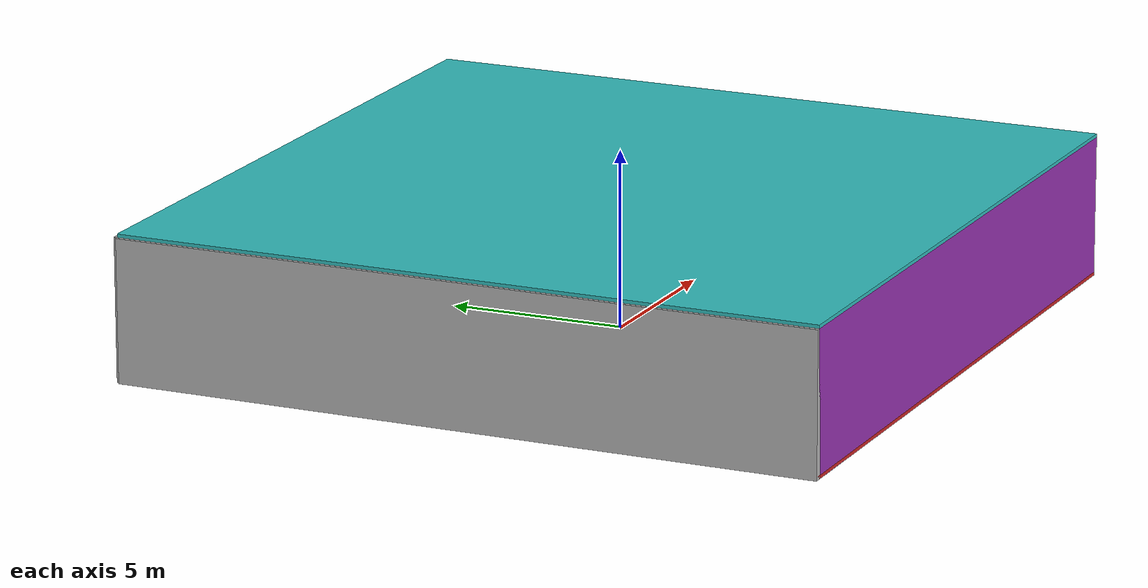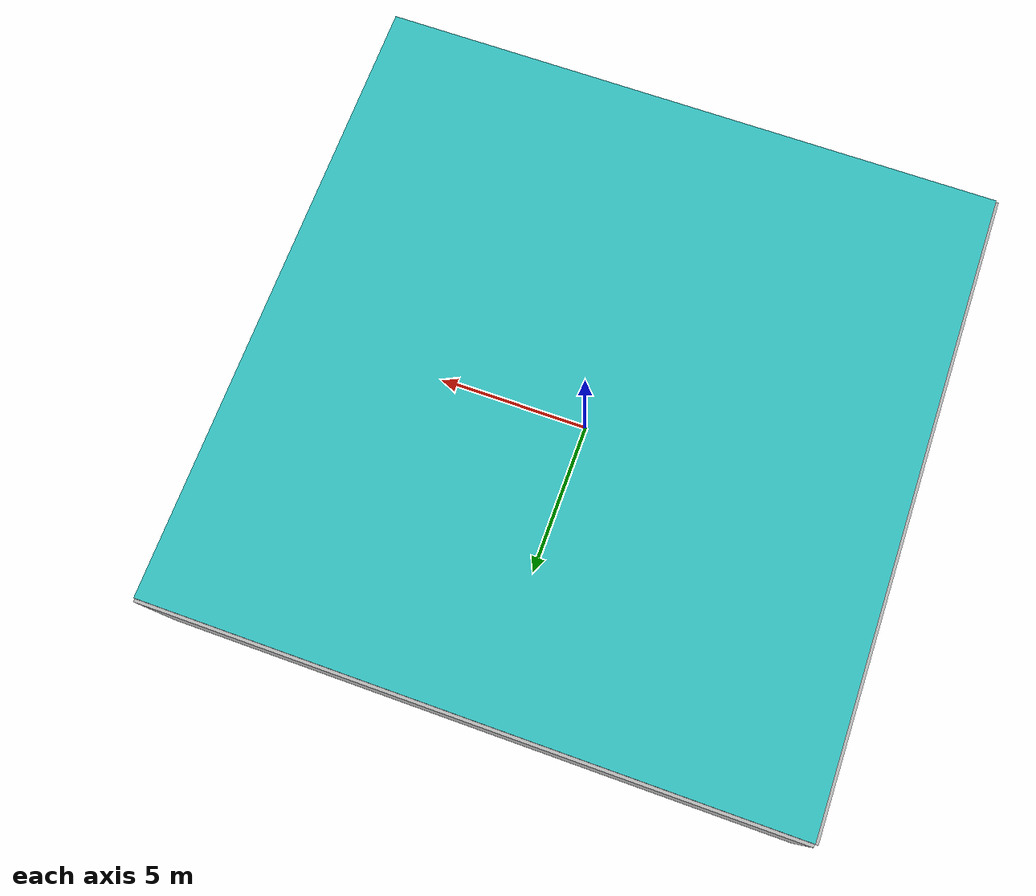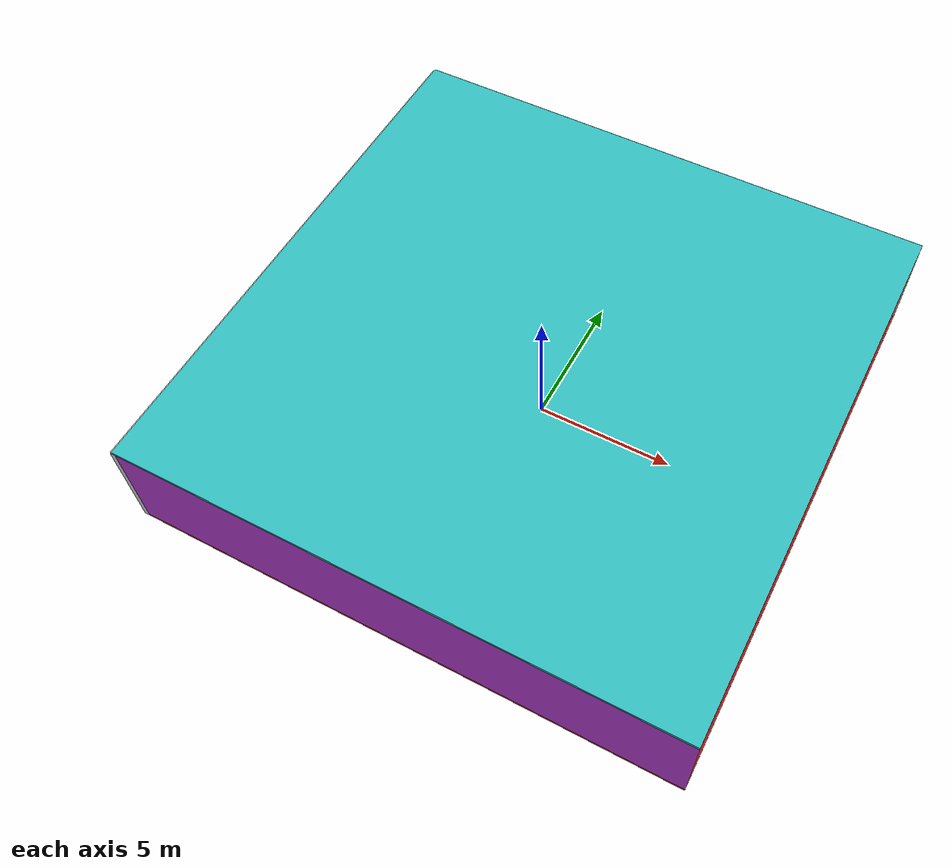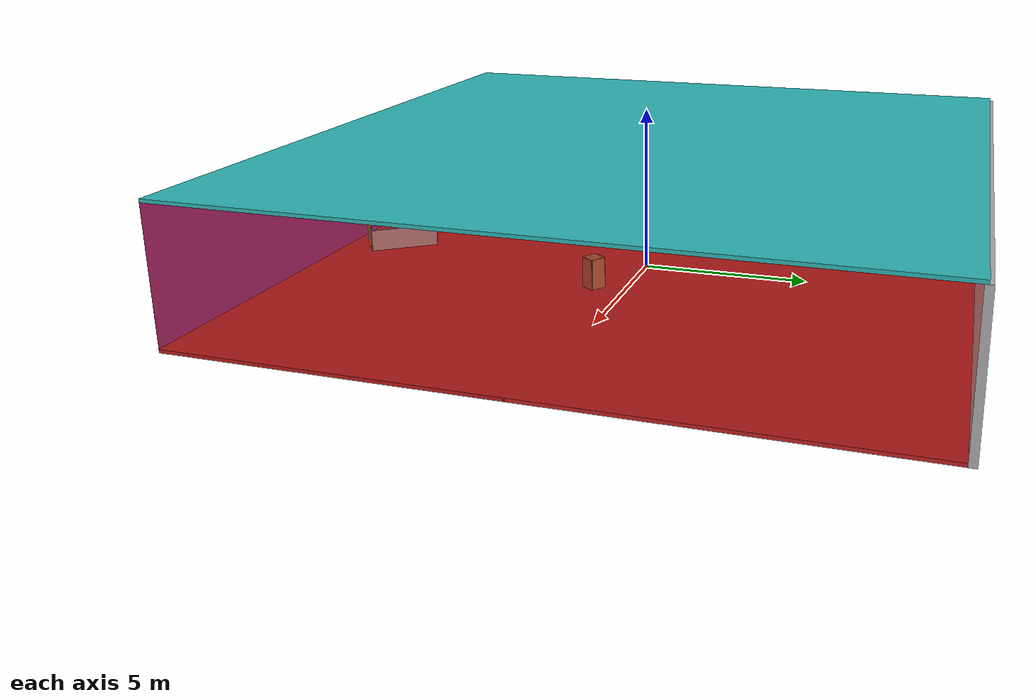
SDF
<sdf version="1.4">
 <world name="default">
  <physics type="ode">
   <max_step_size>0.001</max_step_size>
   <real_time_factor>1</real_time_factor>
   <real_time_update_rate>1000</real_time_update_rate>
   <gravity>0 0 -9.8</gravity>
  </physics>
  <scene><ambient>0.4 0.4 0.4 1</ambient><background>0.7 0.7 0.7 1</background><shadows>1</shadows></scene>
  <model name="Surrounding">
   <static>1</static>
   <link name="Ceiling">
    <collision name="Ceiling_Collision"><geometry><box><size>20 20 0.1</size></box></geometry></collision>
    <visual name="Ceiling_Visual">
     <geometry><box><size>20 20 0.1</size></box></geometry>
     <material>
      <script><uri>file://media/materials/scripts/gazebo.material</uri><name>Gazebo/Turquoise</name></script>
     </material>
    </visual>
    <pose>0 0 4.05 0 0 0</pose>
   </link>
   <link name="Wall_South">
    <collision name="Wall_South_Collision">
     <geometry><box><size>20 0 4</size></box></geometry>
     <pose>0 0 2 0 -0 0</pose>
    </collision>
    <visual name="Wall_South_Visual">
     <pose>0 0 2 0 -0 0</pose>
     <geometry><box><size>20 0 4</size></box></geometry>
     <material>
      <script><uri>file://media/materials/scripts/gazebo.material</uri><name>Gazebo/PurpleGlow</name></script>
     </material>
    </visual>
    <velocity_decay><linear>0</linear><angular>0</angular></velocity_decay>
    <pose>0 -10 0 0 -0 0</pose>
   </link>
   <link name="Wall_East">
    <collision name="Wall_21_Collision">
     <geometry><box><size>20 0 4</size></box></geometry>
     <pose>0 0 2 0 -0 0</pose>
    </collision>
    <visual name="Wall_21_Visual">
     <pose>0 0 2 0 -0 0</pose>
     <geometry><box><size>20 0 4</size></box></geometry>
     <material>
      <script><uri>file://media/materials/scripts/gazebo.material</uri><name>Gazebo/RedTransparent</name></script>
     </material>
    </visual>
    <velocity_decay><linear>0</linear><angular>0</angular></velocity_decay>
    <pose>10 0 0 0 -0 1.5708</pose>
   </link>
   <link name="Wall_North">
    <collision name="Wall_22_Collision">
     <geometry><box><size>20 0.2 4</size></box></geometry>
     <pose>0 0 2 0 -0 0</pose>
    </collision>
    <visual name="Wall_22_Visual">
     <pose>0 0 2 0 -0 0</pose>
     <geometry><box><size>20 0.2 4</size></box></geometry>
     <material>
      <script><uri>file://media/materials/scripts/gazebo.material</uri><name>Gazebo/Pioneer2Body</name></script>
     </material>
    </visual>
    <velocity_decay><linear>0</linear><angular>0</angular></velocity_decay>
    <pose>0 10 0 0 -0 0</pose>
   </link>
   <link name="Wall_West">
    <collision name="Wall_23_Collision">
     <geometry><box><size>20 0.2 4</size></box></geometry>
     <pose>0 0 2 0 -0 0</pose>
    </collision>
    <visual name="Wall_23_Visual">
     <pose>0 0 2 0 -0 0</pose>
     <geometry><box><size>20 0.2 4</size></box></geometry>
     <material>
      <script><uri>file://media/materials/scripts/gazebo.material</uri><name>Gazebo/JointAnchor</name></script>
     </material>
    </visual>
    <velocity_decay><linear>0</linear><angular>0</angular></velocity_decay>
    <pose>-10 0 0 0 0 -1.5708</pose>
   </link>
   <link name="Ground_link">
    <collision name="collision">
     <pose>0 0 .05 0 -0 0</pose>
     <geometry><box><size>20 20 0.1</size></box></geometry>
    </collision>
    <visual name="visual">
     <pose>0 0 .05 0 -0 0</pose>
     <geometry><box><size>20 20 0.1</size></box></geometry>
     <material>
      <script><uri>file://media/materials/scripts/gazebo.material</uri><name>Gazebo/Red</name></script>
     </material>
    </visual>
   </link>
   <static>1</static>
  </model>
  <spherical_coordinates>
   <surface_model>EARTH_WGS84</surface_model>
   <latitude_deg>0</latitude_deg>
   <longitude_deg>0</longitude_deg>
   <elevation>0</elevation>
   <heading_deg>0</heading_deg>
  </spherical_coordinates>
  <light name="lightball_0" type="diffuse">
   <diffuse>0.8 0.8 0.8 1</diffuse>
   <specular>0.2 0.2 0.2 1</specular>
   <attenuation>
    <range>100</range>
    <constant>0.7</constant>
    <linear>0.01</linear>
    <quadratic>0.001</quadratic>
   </attenuation>
   <direction>-0.5 0.1 -0.9</direction>
   <pose>6.05648665626 -1.27365424809 3.59145114894 0 0 0</pose>
  </light>
  <light name="lightball_1" type="diffuse">
   <diffuse>0.8 0.8 0.8 1</diffuse>
   <specular>0.2 0.2 0.2 1</specular>
   <attenuation>
    <range>100</range>
    <constant>0.7</constant>
    <linear>0.01</linear>
    <quadratic>0.001</quadratic>
   </attenuation>
   <direction>-0.5 0.1 -0.9</direction>
   <pose>-8.42584427448 -8.14914813351 2.27816004242 0 0 0</pose>
  </light>
  <light name="lightball_2" type="diffuse">
   <diffuse>0.8 0.8 0.8 1</diffuse>
   <specular>0.2 0.2 0.2 1</specular>
   <attenuation>
    <range>100</range>
    <constant>0.7</constant>
    <linear>0.01</linear>
    <quadratic>0.001</quadratic>
   </attenuation>
   <direction>-0.5 0.1 -0.9</direction>
   <pose>9.88197670724 2.94699992373 3.46819747955 0 0 0</pose>
  </light>
  <light name="lightball_3" type="diffuse">
   <diffuse>0.8 0.8 0.8 1</diffuse>
   <specular>0.2 0.2 0.2 1</specular>
   <attenuation>
    <range>100</range>
    <constant>0.7</constant>
    <linear>0.01</linear>
    <quadratic>0.001</quadratic>
   </attenuation>
   <direction>-0.5 0.1 -0.9</direction>
   <pose>7.66835494458 8.44688198696 2.40780480132 0 0 0</pose>
  </light>
  <light name="lightball_4" type="diffuse">
   <diffuse>0.8 0.8 0.8 1</diffuse>
   <specular>0.2 0.2 0.2 1</specular>
   <attenuation>
    <range>100</range>
    <constant>0.7</constant>
    <linear>0.01</linear>
    <quadratic>0.001</quadratic>
   </attenuation>
   <direction>-0.5 0.1 -0.9</direction>
   <pose>-4.68188071567 -8.13080024378 0.661038481723 0 0 0</pose>
  </light>
  <include><uri>model://table</uri><pose>-3.64575910457 8.37789536823 0 0 0 0.656681188562</pose></include>
  <include><uri>model://cabinet</uri><pose>-2.59556604633 -1.13876324701 0 0 0 2.73130402723</pose></include>
  <include>
   <uri>model://robocup_3Dsim_goal</uri>
   <pose>0.364369794266 -8.36174531035 0 0 0 0.624631833249</pose>
  </include>
  <include><uri>model://cabinet</uri><pose>2.46366802641 -0.894410204427 0 0 0 0.970908064457</pose></include>
 </world>
</sdf>

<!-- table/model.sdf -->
<sdf version="1.5">
  <model name="table">
    <static>true</static>
    <link name="link">
      <collision name="surface">
        <pose>0 0 1.0 0 0 0</pose>
        <geometry>
          <box>
            <size>1.5 0.8 0.03</size>
          </box>
        </geometry>
        <surface>
          <friction>
            <ode>
              <mu>0.6</mu>
              <mu2>0.6</mu2>
            </ode>
          </friction>
        </surface>
      </collision>
      <visual name="visual1">
        <pose>0 0 1.0 0 0 0</pose>
        <geometry>
          <box>
            <size>1.5 0.8 0.03</size>
          </box>
        </geometry>
        <material>
          <script>
            <uri>model://media/materials/scripts/gazebo.material</uri>
            <name>Gazebo/Wood</name>
          </script>
        </material>
      </visual>
      <collision name="front_left_leg">
        <pose>0.68 0.38 0.5 0 0 0</pose>
        <geometry>
          <cylinder>
            <radius>0.02</radius>
            <length>1.0</length>
          </cylinder>
        </geometry>
      </collision>
      <visual name="front_left_leg">
        <pose>0.68 0.38 0.5 0 0 0</pose>
        <geometry>
          <cylinder>
            <radius>0.02</radius>
            <length>1.0</length>
          </cylinder>
        </geometry>
        <material>
          <script>
            <uri>model://media/materials/scripts/gazebo.material</uri>
            <name>Gazebo/Grey</name>
          </script>
        </material>
      </visual>
      <collision name="front_right_leg">
        <pose>0.68 -0.38 0.5 0 0 0</pose>
        <geometry>
          <cylinder>
            <radius>0.02</radius>
            <length>1.0</length>
          </cylinder>
        </geometry>
      </collision>
      <visual name="front_right_leg">
        <pose>0.68 -0.38 0.5 0 0 0</pose>
        <geometry>
          <cylinder>
            <radius>0.02</radius>
            <length>1.0</length>
          </cylinder>
        </geometry>
        <material>
          <script>
            <uri>model://media/materials/scripts/gazebo.material</uri>
            <name>Gazebo/Grey</name>
          </script>
        </material>
      </visual>
      <collision name="back_right_leg">
        <pose>-0.68 -0.38 0.5 0 0 0</pose>
        <geometry>
          <cylinder>
            <radius>0.02</radius>
            <length>1.0</length>
          </cylinder>
        </geometry>
      </collision>
      <visual name="back_right_leg">
        <pose>-0.68 -0.38 0.5 0 0 0</pose>
        <geometry>
          <cylinder>
            <radius>0.02</radius>
            <length>1.0</length>
          </cylinder>
        </geometry>
        <material>
          <script>
            <uri>model://media/materials/scripts/gazebo.material</uri>
            <name>Gazebo/Grey</name>
          </script>
        </material>
      </visual>
      <collision name="back_left_leg">
        <pose>-0.68 0.38 0.5 0 0 0</pose>
        <geometry>
          <cylinder>
            <radius>0.02</radius>
            <length>1.0</length>
          </cylinder>
        </geometry>
      </collision>
      <visual name="back_left_leg">
        <pose>-0.68 0.38 0.5 0 0 0</pose>
        <geometry>
          <cylinder>
            <radius>0.02</radius>
            <length>1.0</length>
          </cylinder>
        </geometry>
        <material>
          <script>
            <uri>model://media/materials/scripts/gazebo.material</uri>
            <name>Gazebo/Grey</name>
          </script>
        </material>
      </visual>
    </link>
  </model>
</sdf>

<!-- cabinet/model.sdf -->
<sdf version="1.5">
  <model name="cabinet">
    <static>true</static>
    <link name="cabinet_bottom_plate">
      <inertial>
        <pose>0 0 -1 0 0 0</pose>
        <inertia>
          <ixx>2.050000</ixx>
          <ixy>0</ixy>
          <ixz>0</ixz>
          <iyy>2.050000</iyy>
          <iyz>0</iyz>
          <izz>2.050000</izz>
        </inertia>
        <mass>25.000000</mass>
      </inertial>
      <collision name="cabinet_bottom_plate_geom">
        <pose>0 0 0.010000 0 0 0</pose>
        <geometry>
          <box>
            <size>0.450000 0.450000 0.020000</size>
          </box>
        </geometry>
      </collision>
      <visual name="cabinet_bottom_plate_geom_visual">
        <pose>0 0 0.010000 0 0 0</pose>
        <geometry>
          <box>
            <size>0.450000 0.450000 0.020000</size>
          </box>
        </geometry>
        <material>
          <script>
            <uri>model://media/materials/scripts/gazebo.material</uri>
            <name>Gazebo/Wood</name>
          </script>
        </material>
      </visual>
      <collision name="cabinet_bottom_plate_geom_cabinet_back_plate">
        <pose>0.235000 0 0.510000 0 0 0</pose>
        <geometry>
          <box>
            <size>0.020000 0.450000 1.020000</size>
          </box>
        </geometry>
      </collision>
      <visual name="cabinet_bottom_plate_geom_cabinet_back_plate_visual">
        <pose>0.235000 0 0.510000 0 0 0</pose>
        <geometry>
          <box>
            <size>0.020000 0.450000 1.020000</size>
          </box>
        </geometry>
        <material>
          <script>
            <uri>model://media/materials/scripts/gazebo.material</uri>
            <name>Gazebo/Wood</name>
          </script>
        </material>
      </visual>
      <collision name="cabinet_bottom_plate_geom_cabinet_left_plate">
        <pose>0 0.235000 0.510000 0 0 0</pose>
        <geometry>
          <box>
            <size>0.450000 0.020000 1.020000</size>
          </box>
        </geometry>
      </collision>
      <visual name="cabinet_bottom_plate_geom_cabinet_left_plate_visual">
        <pose>0 0.235000 0.510000 0 0 0</pose>
        <geometry>
          <box>
            <size>0.450000 0.020000 1.020000</size>
          </box>
        </geometry>
        <material>
          <script>
            <uri>model://media/materials/scripts/gazebo.material</uri>
            <name>Gazebo/Wood</name>
          </script>
        </material>
      </visual>
      <collision name="cabinet_bottom_plate_geom_cabinet_middle_plate">
        <pose>0 0 0.510000 0 0 0</pose>
        <geometry>
          <box>
            <size>0.450000 0.450000 0.020000</size>
          </box>
        </geometry>
      </collision>
      <visual name="cabinet_bottom_plate_geom_cabinet_middle_plate_visual">
        <pose>0 0 0.510000 0 0 0</pose>
        <geometry>
          <box>
            <size>0.450000 0.450000 0.020000</size>
          </box>
        </geometry>
        <material>
          <script>
            <uri>model://media/materials/scripts/gazebo.material</uri>
            <name>Gazebo/Wood</name>
          </script>
        </material>
      </visual>
      <collision name="cabinet_bottom_plate_geom_cabinet_right_plate">
        <pose>0 -0.235000 0.510000 0 0 0</pose>
        <geometry>
          <box>
            <size>0.450000 0.020000 1.020000</size>
          </box>
        </geometry>
      </collision>
      <visual name="cabinet_bottom_plate_geom_cabinet_right_plate_visual">
        <pose>0 -0.235000 0.510000 0 0 0</pose>
        <geometry>
          <box>
            <size>0.450000 0.020000 1.020000</size>
          </box>
        </geometry>
        <material>
          <script>
            <uri>model://media/materials/scripts/gazebo.material</uri>
            <name>Gazebo/Wood</name>
          </script>
        </material>
      </visual>
      <collision name="cabinet_bottom_plate_geom_cabinet_top_plate">
        <pose>0 0 1.010000 0 0 0</pose>
        <geometry>
          <box>
            <size>0.450000 0.450000 0.020000</size>
          </box>
        </geometry>
      </collision>
      <visual name="cabinet_bottom_plate_geom_cabinet_top_plate_visual">
        <pose>0 0 1.010000 0 0 0</pose>
        <geometry>
          <box>
            <size>0.450000 0.450000 0.020000</size>
          </box>
        </geometry>
        <material>
          <script>
            <uri>model://media/materials/scripts/gazebo.material</uri>
            <name>Gazebo/Wood</name>
          </script>
        </material>
      </visual>
    </link>
  </model>
</sdf>

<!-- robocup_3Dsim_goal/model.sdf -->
<sdf version="1.5">
  <model name="robocup_3d_goal">
    <static>true</static>
    <link name="left_post">
      <pose>0 1.05 0.45 0 0 0</pose>
      <collision name="collision">
        <geometry>
          <cylinder>
            <radius>0.05</radius>
            <length>0.9</length>
          </cylinder>
        </geometry>
      </collision>
      <visual name="visual">
        <geometry>
          <cylinder>
            <radius>0.05</radius>
            <length>0.9</length>
          </cylinder>
        </geometry>
        <material>
          <script>
            <uri>file://media/materials/scripts/gazebo.material</uri>
            <name>Gazebo/ZincYellow</name>
          </script>
        </material>
      </visual>
    </link>
    <link name="left_support_horiz_lower">
      <pose>0.30 1.05 0.01 0 0 0</pose>
      <collision name="collision">
        <geometry>
          <box>
            <size>0.50 0.02 0.02</size>
          </box>
        </geometry>
      </collision>
      <visual name="visual">
        <geometry>
          <box>
            <size>0.50 0.02 0.02</size>
          </box>
        </geometry>
        <material>
          <script>
            <uri>file://media/materials/scripts/gazebo.material</uri>
            <name>Gazebo/White</name>
          </script>
        </material>
      </visual>
    </link>
    <link name="left_support_horiz_upper">
      <pose>0.30 1.05 0.79 0 0 0</pose>
      <collision name="collision">
        <geometry>
          <box>
            <size>0.50 0.02 0.02</size>
          </box>
        </geometry>
      </collision>
      <visual name="visual">
        <geometry>
          <box>
            <size>0.50 0.02 0.02</size>
          </box>
        </geometry>
        <material>
          <script>
            <uri>file://media/materials/scripts/gazebo.material</uri>
            <name>Gazebo/White</name>
          </script>
        </material>
      </visual>
    </link>
    <link name="left_support_vertical">
      <pose>0.56 1.05 0.4 0 1.5708 0</pose>
      <collision name="collision">
        <geometry>
          <box>
            <size>0.80 0.02 0.02</size>
          </box>
        </geometry>
      </collision>
      <visual name="visual">
        <geometry>
          <box>
            <size>0.80 0.02 0.02</size>
          </box>
        </geometry>
        <material>
          <script>
            <uri>file://media/materials/scripts/gazebo.material</uri>
            <name>Gazebo/White</name>
          </script>
        </material>
      </visual>
    </link>
    <link name="right_support_horiz_lower">
      <pose>0.30 -1.05 0.01 0 0 0</pose>
      <collision name="collision">
        <geometry>
          <box>
            <size>0.50 0.02 0.02</size>
          </box>
        </geometry>
      </collision>
      <visual name="visual">
        <geometry>
          <box>
            <size>0.50 0.02 0.02</size>
          </box>
        </geometry>
        <material>
          <script>
            <uri>file://media/materials/scripts/gazebo.material</uri>
            <name>Gazebo/White</name>
          </script>
        </material>
      </visual>
    </link>
    <link name="right_support_horiz_upper">
      <pose>0.30 -1.05 0.79 0 0 0</pose>
      <collision name="collision">
        <geometry>
          <box>
            <size>0.50 0.02 0.02</size>
          </box>
        </geometry>
      </collision>
      <visual name="visual">
        <geometry>
          <box>
            <size>0.50 0.02 0.02</size>
          </box>
        </geometry>
        <material>
          <script>
            <uri>file://media/materials/scripts/gazebo.material</uri>
            <name>Gazebo/White</name>
          </script>
        </material>
      </visual>
    </link>
    <link name="right_support_vertical">
      <pose>0.56 -1.05 0.4 0 1.5708 0</pose>
      <collision name="collision">
        <geometry>
          <box>
            <size>0.80 0.02 0.02</size>
          </box>
        </geometry>
      </collision>
      <visual name="visual">
        <geometry>
          <box>
            <size>0.80 0.02 0.02</size>
          </box>
        </geometry>
        <material>
          <script>
            <uri>file://media/materials/scripts/gazebo.material</uri>
            <name>Gazebo/White</name>
          </script>
        </material>
      </visual>
    </link>
    <link name="center_support_horiz_lower">
      <pose>0.56 0 0.01 0 1.5708 0</pose>
      <collision name="collision">
        <geometry>
          <box>
            <size>0.02 2.08 0.02</size>
          </box>
        </geometry>
      </collision>
      <visual name="visual">
        <geometry>
          <box>
            <size>0.02 2.08 0.02</size>
          </box>
        </geometry>
        <material>
          <script>
            <uri>file://media/materials/scripts/gazebo.material</uri>
            <name>Gazebo/White</name>
          </script>
        </material>
      </visual>
    </link>
    <link name="center_support_horiz_upper">
      <pose>0.56 0 0.79 0 1.5708 0</pose>
      <collision name="collision">
        <geometry>
          <box>
            <size>0.02 2.08 0.02</size>
          </box>
        </geometry>
      </collision>
      <visual name="visual">
        <geometry>
          <box>
            <size>0.02 2.08 0.02</size>
          </box>
        </geometry>
        <material>
          <script>
            <uri>file://media/materials/scripts/gazebo.material</uri>
            <name>Gazebo/White</name>
          </script>
        </material>
      </visual>
    </link>
    <link name="right_post">
      <pose>0 -1.05 0.45 0 0 0</pose>
      <collision name="collision">
        <geometry>
          <cylinder>
            <radius>0.05</radius>
            <length>0.9</length>
          </cylinder>
        </geometry>
      </collision>
      <visual name="visual">
        <geometry>
          <cylinder>
            <radius>0.05</radius>
            <length>0.9</length>
          </cylinder>
        </geometry>
        <material>
          <script>
            <uri>file://media/materials/scripts/gazebo.material</uri>
            <name>Gazebo/ZincYellow</name>
          </script>
        </material>
      </visual>
    </link>
    <link name="crossbar">
      <pose>0 0 0.85 1.57 1.57 0</pose>
      <collision name="collision">
        <geometry>
          <cylinder>
            <radius>0.05</radius>
            <length>2.0</length>
          </cylinder>
        </geometry>
      </collision>
      <visual name="visual">
        <geometry>
          <cylinder>
            <radius>0.05</radius>
            <length>2.0</length>
          </cylinder>
        </geometry>
        <material>
          <script>
            <uri>file://media/materials/scripts/gazebo.material</uri>
            <name>Gazebo/ZincYellow</name>
          </script>
        </material>
      </visual>
    </link>
    <link name="center_net">
      <pose>0.56 0 0.40 0 0 0</pose>
      <collision name="collision">
        <geometry>
          <box>
            <size>0.01 2.1 0.80</size>
          </box>
        </geometry>
      </collision>
      <visual name="visual">
        <geometry>
          <box>
            <size>0.01 2.1 0.80</size>
          </box>
        </geometry>
        <material>
          <script>
            <uri>model://../model_source/models/robocup09_spl_field/materials/scripts/</uri>
            <uri>model://../model_source/models/robocup09_spl_field/materials/textures/</uri>
            <name>RoboCup/Net</name>
          </script>
        </material>
      </visual>
    </link>
    <link name="left_net">
      <pose>0.30 1.05 0.40 0 0 0</pose>
      <collision name="collision">
        <geometry>
          <box>
            <size>0.50 0.01 0.76</size>
          </box>
        </geometry>
      </collision>
      <visual name="visual">
        <geometry>
          <box>
            <size>0.50 0.01 0.76</size>
          </box>
        </geometry>
        <material>
          <script>
            <uri>model://../model_source/models/robocup09_spl_field/materials/scripts/</uri>
            <uri>model://../model_source/models/robocup09_spl_field/materials/textures/</uri>
            <name>RoboCup/Net</name>
          </script>
        </material>
      </visual>
    </link>
    <link name="right_net">
      <pose>0.30 -1.05 0.40 0 0 0</pose>
      <collision name="collision">
        <geometry>
          <box>
            <size>0.50 0.01 0.76</size>
          </box>
        </geometry>
      </collision>
      <visual name="visual">
        <geometry>
          <box>
            <size>0.50 0.01 0.76</size>
          </box>
        </geometry>
        <material>
          <script>
            <uri>model://../model_source/models/robocup09_spl_field/materials/scripts/</uri>
            <uri>model://../model_source/models/robocup09_spl_field/materials/textures/</uri>
            <name>RoboCup/Net</name>
          </script>
        </material>
      </visual>
    </link>
  </model>
</sdf>
